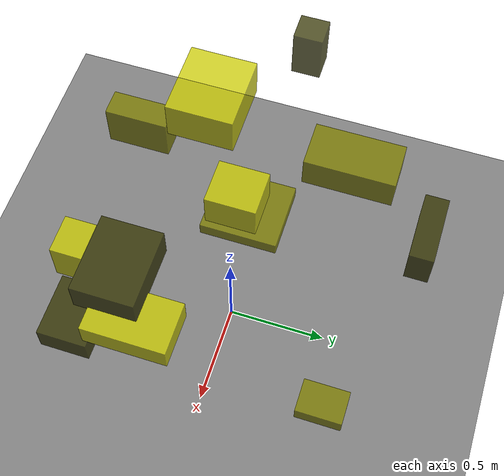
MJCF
<?xml version="1.0"?>
<mujoco model="obstacle_scene">
  <compiler angle="radian" coordinate="local"/>
  <option timestep="0.001" gravity="0 0 -9.81"/>

  <asset>
    <material name="obstacle_mat" rgba="0.8 0.8 0.0 0.8"/>
    <material name="ground_mat" rgba="0.5 0.5 0.5 1"/>
  </asset>

  <worldbody>
    <!-- Ground plane -->
    <geom name="ground" type="plane" size="3 3 0.1" material="ground_mat"/>

    <!-- Obstacles -->
    <body name="obstacle_0" pos="0.330719 -0.731682 0.131042">
      <geom name="obs_0" type="box" size="0.167819 0.132250 0.073269" rgba="0.2 0.2 0.0 0.8"/>
    </body>
    <body name="obstacle_1" pos="-0.423245 -0.042721 0.352345">
      <geom name="obs_1" type="box" size="0.182010 0.203010 0.036734" rgba="0.5 0.5 0.0 0.8"/>
    </body>
    <body name="obstacle_2" pos="0.185388 -0.712679 0.609993">
      <geom name="obs_2" type="box" size="0.096301 0.079884 0.112526" rgba="0.8 0.8 0.0 0.8"/>
    </body>
    <body name="obstacle_3" pos="-0.515889 0.876063 0.396232">
      <geom name="obs_3" type="box" size="0.185667 0.062030 0.107788" rgba="0.2 0.2 0.0 0.8"/>
    </body>
    <body name="obstacle_4" pos="-0.349436 0.467755 1.116588">
      <geom name="obs_4" type="box" size="0.106689 0.205317 0.078492" rgba="0.5 0.5 0.0 0.8"/>
    </body>
    <body name="obstacle_5" pos="-0.231487 -0.037468 0.773321">
      <geom name="obs_5" type="box" size="0.113698 0.126101 0.093629" rgba="0.8 0.8 0.0 0.8"/>
    </body>
    <body name="obstacle_6" pos="0.409573 -0.359623 1.015525">
      <geom name="obs_6" type="box" size="0.184365 0.144116 0.076161" rgba="0.2 0.2 0.0 0.8"/>
    </body>
    <body name="obstacle_7" pos="0.718430 0.629862 0.988473">
      <geom name="obs_7" type="box" size="0.070333 0.096432 0.035832" rgba="0.5 0.5 0.0 0.8"/>
    </body>
    <body name="obstacle_8" pos="0.574547 -0.242482 0.893563">
      <geom name="obs_8" type="box" size="0.122794 0.194075 0.061635" rgba="0.8 0.8 0.0 0.8"/>
    </body>
    <body name="obstacle_9" pos="-0.920536 0.104839 1.139687">
      <geom name="obs_9" type="box" size="0.065733 0.069600 0.126194" rgba="0.2 0.2 0.0 0.8"/>
    </body>
    <body name="obstacle_10" pos="-0.873946 -0.818640 0.204357">
      <geom name="obs_10" type="box" size="0.073208 0.177473 0.129845" rgba="0.5 0.5 0.0 0.8"/>
    </body>
    <body name="obstacle_11" pos="-0.692403 -0.318035 0.854398">
      <geom name="obs_11" type="box" size="0.194546 0.170942 0.107974" rgba="0.8 0.8 0.0 0.8"/>
    </body>
  </worldbody>
</mujoco>
